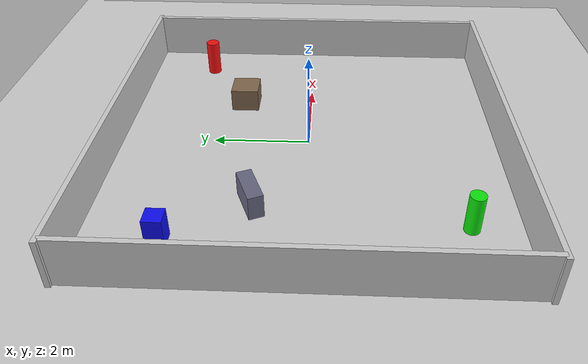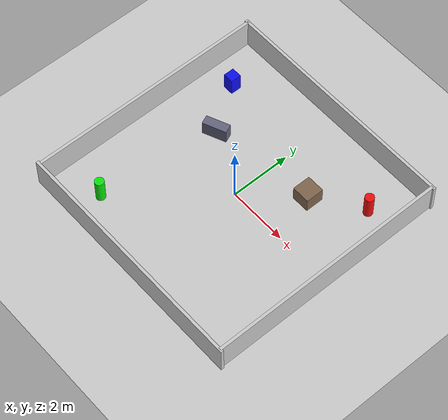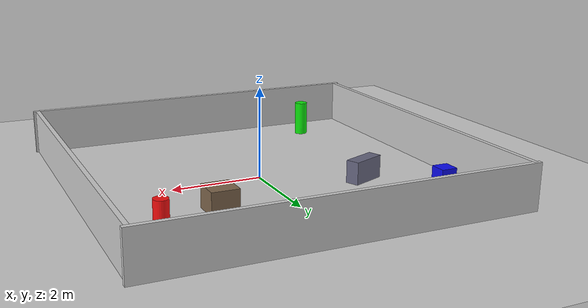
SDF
<?xml version="1.0" ?>
<sdf version="1.6">
  <world name="lab">
    <physics type="ode">
      <max_step_size>0.001</max_step_size>
      <real_time_update_rate>1000</real_time_update_rate>
    </physics>

    <include>
      <uri>https://fuel.gazebosim.org/1.0/OpenRobotics/models/Sun</uri>
    </include>
    <include>
      <uri>https://fuel.gazebosim.org/1.0/OpenRobotics/models/Ground Plane</uri>
    </include>

    <model name="wall_north">
      <static>true</static>
      <pose>0 4 0.5 0 0 0</pose>
      <link name="link">
        <collision name="collision"><geometry><box><size>8.2 0.1 1</size></box></geometry></collision>
        <visual name="visual"><geometry><box><size>8.2 0.1 1</size></box></geometry><material><ambient>0.8 0.8 0.8 1</ambient></material></visual>
      </link>
    </model>
    <model name="wall_south">
      <static>true</static>
      <pose>0 -4 0.5 0 0 0</pose>
      <link name="link">
        <collision name="collision"><geometry><box><size>8.2 0.1 1</size></box></geometry></collision>
        <visual name="visual"><geometry><box><size>8.2 0.1 1</size></box></geometry><material><ambient>0.8 0.8 0.8 1</ambient></material></visual>
      </link>
    </model>
    <model name="wall_east">
      <static>true</static>
      <pose>4 0 0.5 0 0 0</pose>
      <link name="link">
        <collision name="collision"><geometry><box><size>0.1 8 1</size></box></geometry></collision>
        <visual name="visual"><geometry><box><size>0.1 8 1</size></box></geometry><material><ambient>0.8 0.8 0.8 1</ambient></material></visual>
      </link>
    </model>
    <model name="wall_west">
      <static>true</static>
      <pose>-4 0 0.5 0 0 0</pose>
      <link name="link">
        <collision name="collision"><geometry><box><size>0.1 8 1</size></box></geometry></collision>
        <visual name="visual"><geometry><box><size>0.1 8 1</size></box></geometry><material><ambient>0.8 0.8 0.8 1</ambient></material></visual>
      </link>
    </model>

    <model name="obstacle_1">
      <static>true</static>
      <pose>1.5 1.5 0.25 0 0 0</pose>
      <link name="link">
        <collision name="collision"><geometry><box><size>0.6 0.6 0.5</size></box></geometry></collision>
        <visual name="visual"><geometry><box><size>0.6 0.6 0.5</size></box></geometry><material><ambient>0.5 0.4 0.3 1</ambient></material></visual>
      </link>
    </model>
    <model name="obstacle_2">
      <static>true</static>
      <pose>-2 1 0.25 0 0 0.4</pose>
      <link name="link">
        <collision name="collision"><geometry><box><size>0.8 0.3 0.5</size></box></geometry></collision>
        <visual name="visual"><geometry><box><size>0.8 0.3 0.5</size></box></geometry><material><ambient>0.4 0.4 0.5 1</ambient></material></visual>
      </link>
    </model>

    <model name="target_red_cylinder">
      <static>true</static>
      <pose>3.0 2.5 0.4 0 0 0</pose>
      <link name="link">
        <collision name="collision"><geometry><cylinder><radius>0.15</radius><length>0.8</length></cylinder></geometry></collision>
        <visual name="visual">
          <geometry><cylinder><radius>0.15</radius><length>0.8</length></cylinder></geometry>
          <material><ambient>0.95 0.05 0.05 1</ambient><diffuse>0.95 0.05 0.05 1</diffuse></material>
        </visual>
      </link>
    </model>

    <model name="target_blue_box">
      <static>true</static>
      <pose>-3.0 2.5 0.3 0 0 0</pose>
      <link name="link">
        <collision name="collision"><geometry><box><size>0.35 0.35 0.6</size></box></geometry></collision>
        <visual name="visual">
          <geometry><box><size>0.35 0.35 0.6</size></box></geometry>
          <material><ambient>0.05 0.05 0.95 1</ambient><diffuse>0.05 0.05 0.95 1</diffuse></material>
        </visual>
      </link>
    </model>

    <model name="target_green_cylinder">
      <static>true</static>
      <pose>-2.5 -3.0 0.4 0 0 0</pose>
      <link name="link">
        <collision name="collision"><geometry><cylinder><radius>0.15</radius><length>0.8</length></cylinder></geometry></collision>
        <visual name="visual">
          <geometry><cylinder><radius>0.15</radius><length>0.8</length></cylinder></geometry>
          <material><ambient>0.05 0.9 0.05 1</ambient><diffuse>0.05 0.9 0.05 1</diffuse></material>
        </visual>
      </link>
    </model>

  </world>
</sdf>
